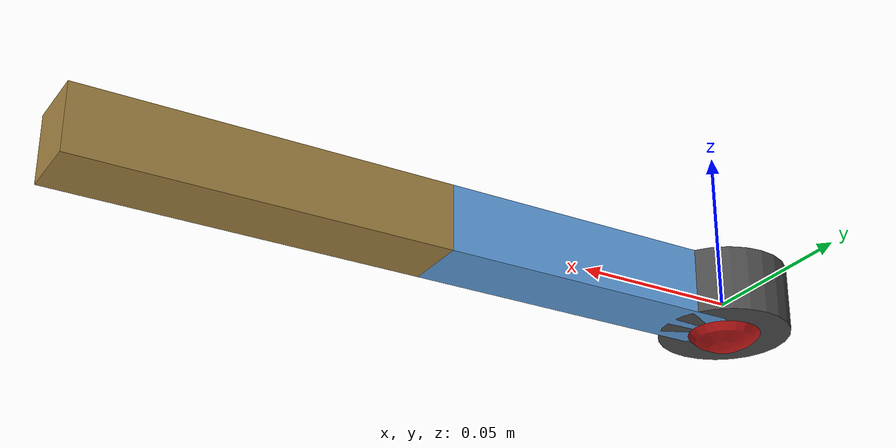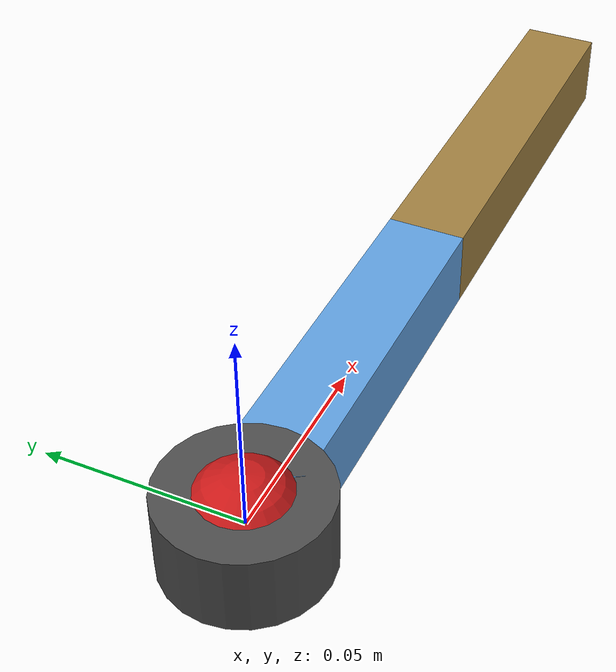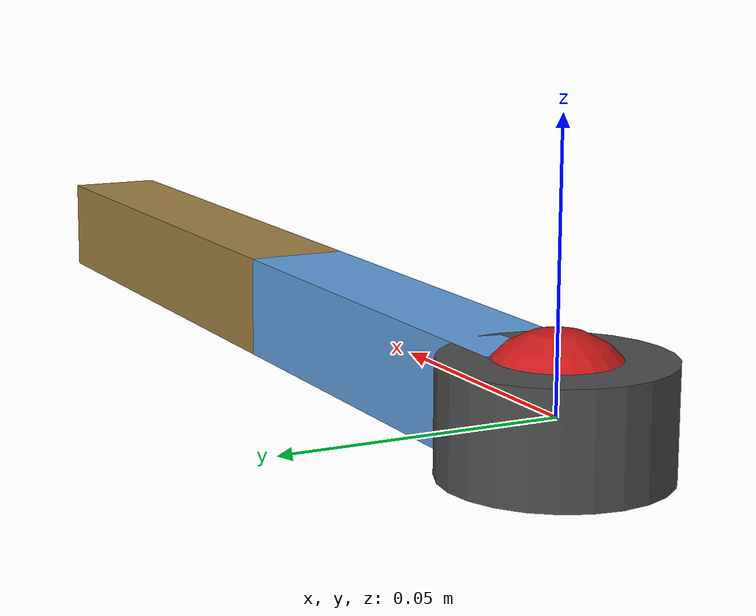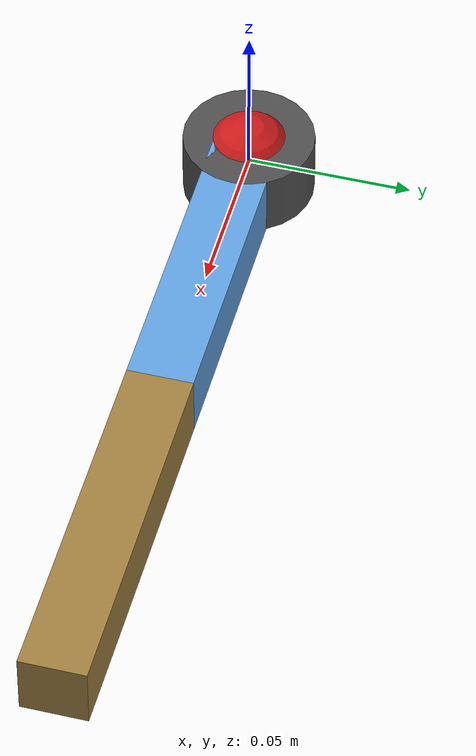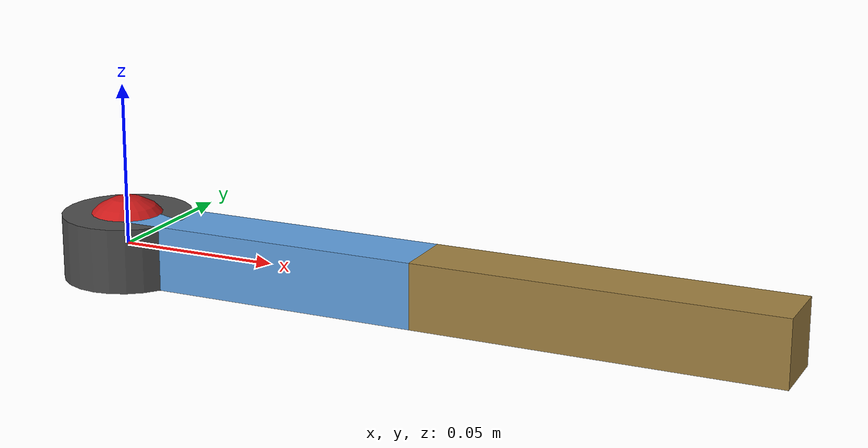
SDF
<?xml version="1.0"?>
<sdf version="1.8">
  <model name="reacher_bare">
    <link name="base">
      <inertial><mass>1.0</mass>
        <inertia><ixx>0.01</ixx><iyy>0.01</iyy><izz>0.01</izz></inertia></inertial>
      <collision name="base_collision">
        <geometry><cylinder><radius>0.02</radius><length>0.02</length></cylinder></geometry></collision>
      <visual name="base_visual">
        <geometry><cylinder><radius>0.02</radius><length>0.02</length></cylinder></geometry>
        <material><ambient>0.3 0.3 0.3 1</ambient><diffuse>0.3 0.3 0.3 1</diffuse></material></visual>
    </link>

    <joint name="joint0" type="revolute">
      <pose relative_to="base">0 0 0 0 0 0</pose>
      <parent>base</parent><child>body0</child>
      <axis><xyz>0 0 1</xyz><dynamics><damping>1.0</damping></dynamics></axis>
    </joint>
    <link name="body0">
      <pose relative_to="joint0">0 0 0 0 0 0</pose>
      <inertial><pose>0.05 0 0 0 0 0</pose><mass>0.12</mass>
        <inertia><ixx>0.06</ixx><iyy>0.06</iyy><izz>0.101</izz></inertia></inertial>
      <collision name="body0_collision"><pose>0.05 0 0 0 0 0</pose>
        <geometry><box><size>0.1 0.02 0.02</size></box></geometry></collision>
      <visual name="body0_visual"><pose>0.05 0 0 0 0 0</pose>
        <geometry><box><size>0.1 0.02 0.02</size></box></geometry>
        <material><ambient>0.375 0.625 0.875 1</ambient><diffuse>0.375 0.625 0.875 1</diffuse></material></visual>
    </link>

    <joint name="joint1" type="revolute">
      <pose relative_to="body0">0.1 0 0 0 0 0</pose>
      <parent>body0</parent><child>body1</child>
      <axis><xyz>0 0 1</xyz>
        <limit><lower>-3.0</lower><upper>3.0</upper></limit>
        <dynamics><damping>1.0</damping></dynamics></axis>
    </joint>
    <link name="body1">
      <pose relative_to="joint1">0 0 0 0 0 0</pose>
      <inertial><pose>0.055 0 0 0 0 0</pose><mass>0.12</mass>
        <inertia><ixx>0.06</ixx><iyy>0.06</iyy><izz>0.101</izz></inertia></inertial>
      <collision name="body1_collision"><pose>0.055 0 0 0 0 0</pose>
        <geometry><box><size>0.11 0.02 0.02</size></box></geometry></collision>
      <visual name="body1_visual"><pose>0.055 0 0 0 0 0</pose>
        <geometry><box><size>0.11 0.02 0.02</size></box></geometry>
        <material><ambient>0.625 0.5 0.25 1</ambient><diffuse>0.625 0.5 0.25 1</diffuse></material></visual>
    </link>

    <!-- goal marker: visual-only (never collides), positioned by two
         prismatic joints so reset randomization moves it -->
    <link name="target_anchor">
      <inertial><mass>0.5</mass>
        <inertia><ixx>0.001</ixx><iyy>0.001</iyy><izz>0.001</izz></inertia></inertial>
    </link>
    <joint name="target_x" type="prismatic">
      <pose relative_to="target_anchor">0 0 0 0 0 0</pose>
      <parent>target_anchor</parent><child>t1</child>
      <axis><xyz>1 0 0</xyz>
        <limit><lower>-0.27</lower><upper>0.27</upper></limit>
        <dynamics><damping>10.0</damping></dynamics></axis>
    </joint>
    <link name="t1"><pose relative_to="target_x">0 0 0 0 0 0</pose>
      <inertial><mass>0.05</mass>
        <inertia><ixx>1e-5</ixx><iyy>1e-5</iyy><izz>1e-5</izz></inertia></inertial>
    </link>
    <joint name="target_y" type="prismatic">
      <pose relative_to="t1">0 0 0 0 0 0</pose>
      <parent>t1</parent><child>target</child>
      <axis><xyz>0 1 0</xyz>
        <limit><lower>-0.27</lower><upper>0.27</upper></limit>
        <dynamics><damping>10.0</damping></dynamics></axis>
    </joint>
    <link name="target"><pose relative_to="target_y">0 0 0 0 0 0</pose>
      <inertial><mass>0.05</mass>
        <inertia><ixx>1e-5</ixx><iyy>1e-5</iyy><izz>1e-5</izz></inertia></inertial>
      <visual name="target_visual">
        <geometry><sphere><radius>0.015</radius></sphere></geometry>
        <material><ambient>0.8 0.1 0.1 1</ambient><diffuse>0.8 0.1 0.1 1</diffuse></material></visual>
    </link>
  </model>
</sdf>
